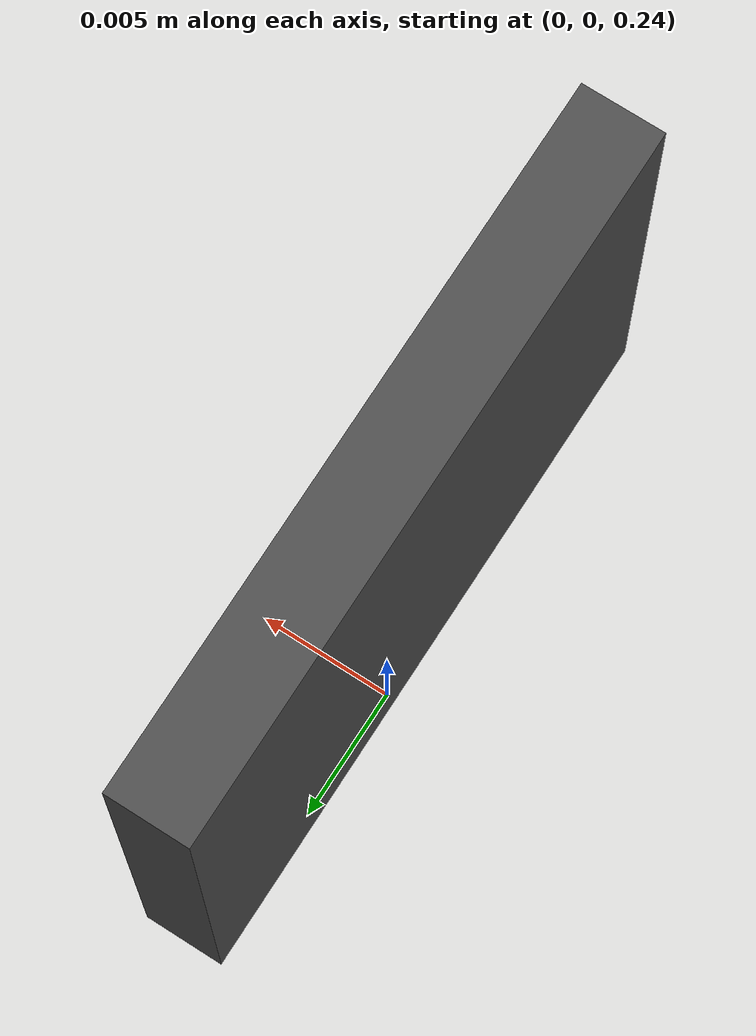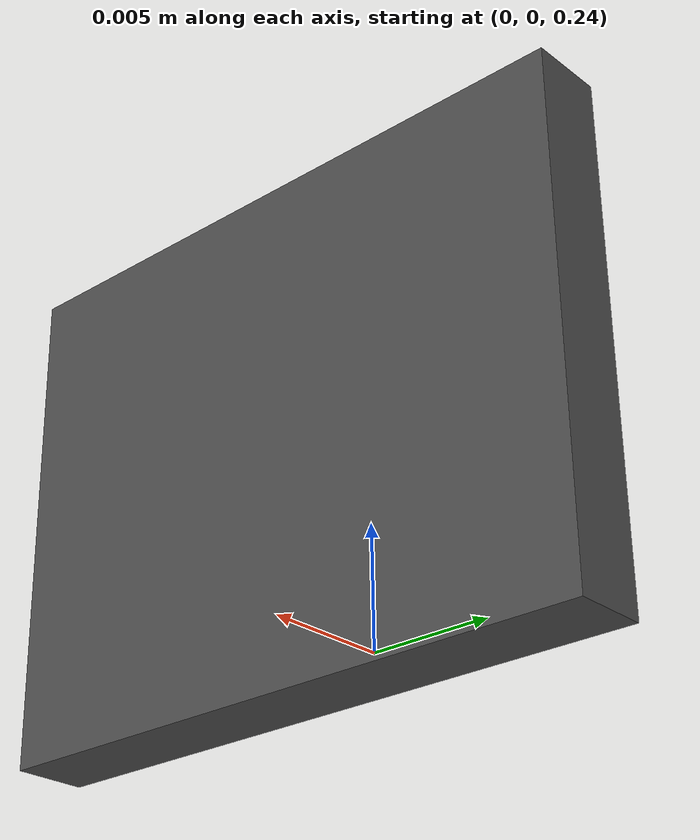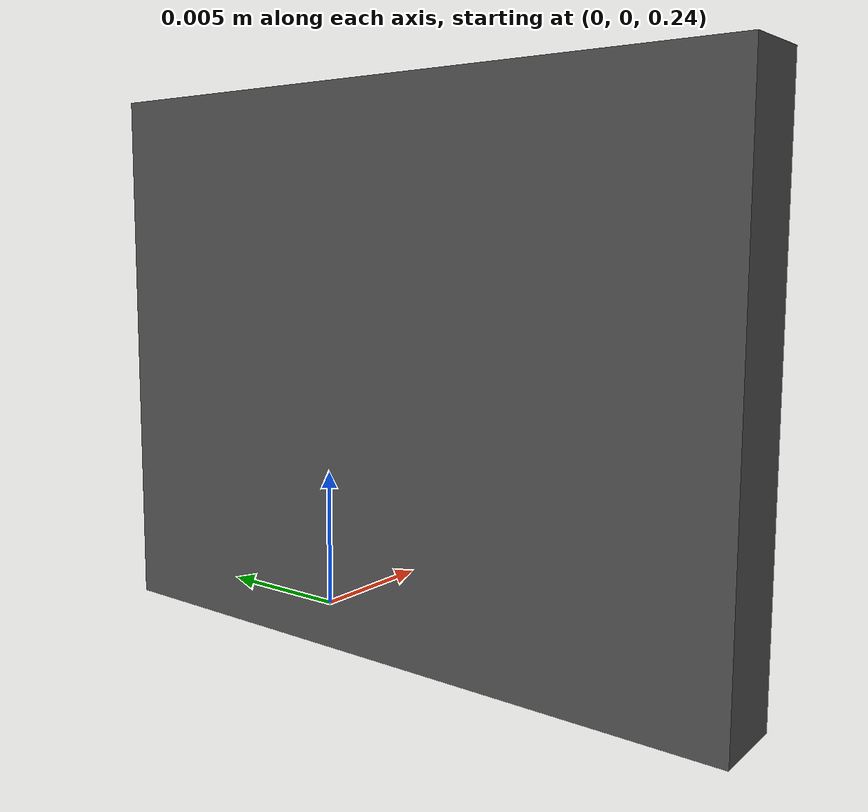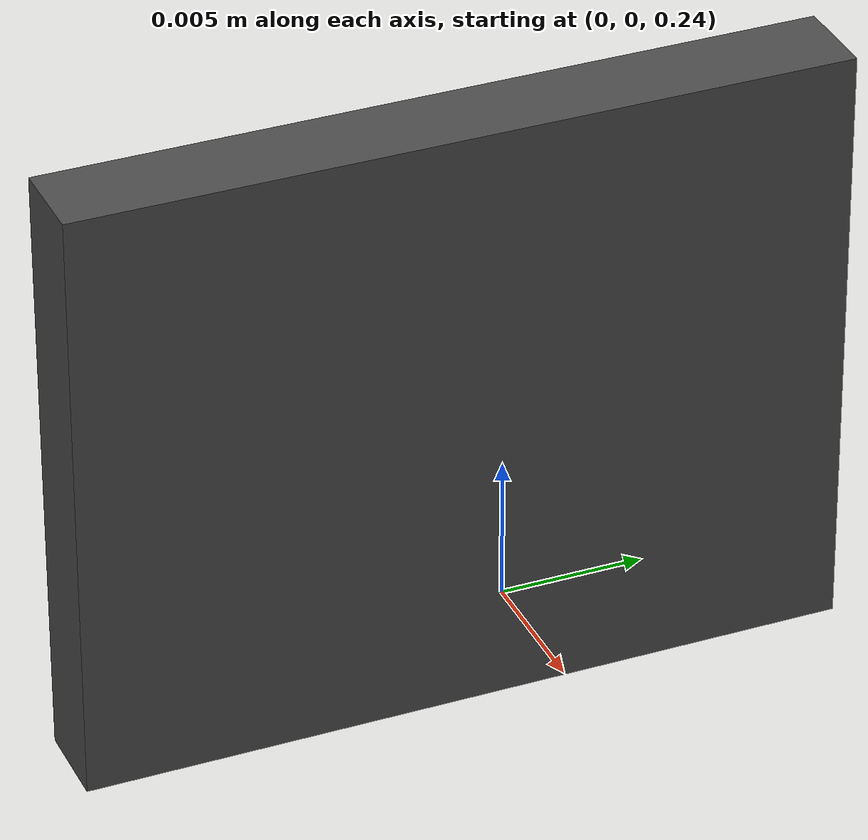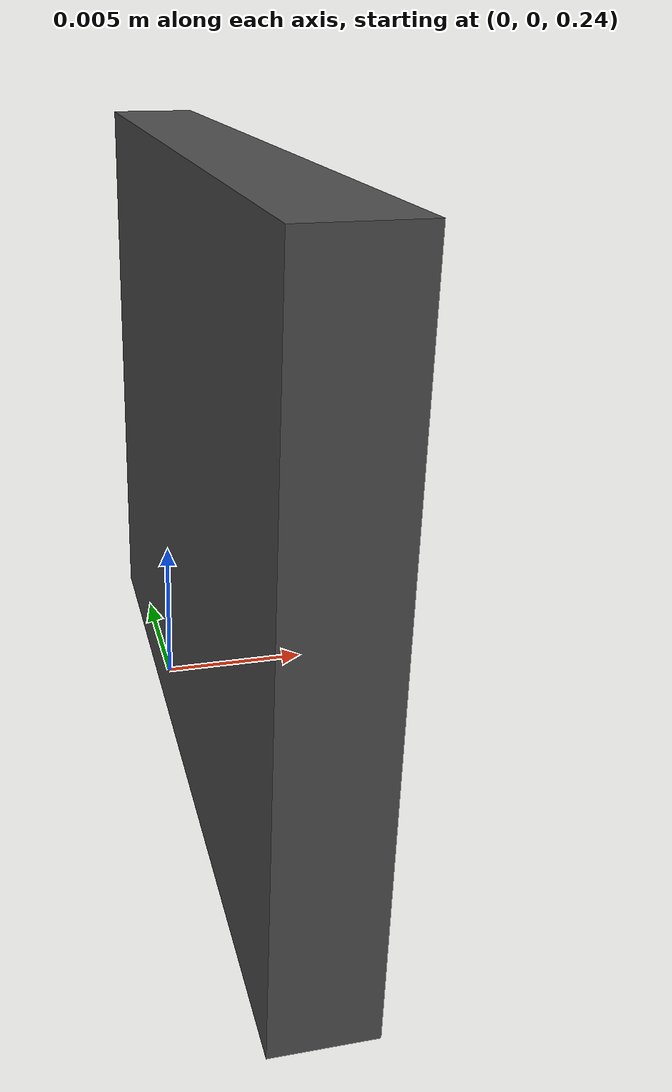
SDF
<?xml version='1.0'?>
<sdf version='1.6'>
  <model name='VL53L1X'>
    <link name='link'>
      <sensor name='VL53L1X_rangefinder' type='ray'>
        <pose frame=''>0 0 0 1.5707 -0 0</pose>
        <visualize>1</visualize>
        <update_rate>10</update_rate>
		<topic>Distance</topic>
		<ray>
          <noise>
            <type>gaussian</type>
            <mean>0</mean>
            <stddev>0.01</stddev>
          </noise>
          <scan>
            <horizontal>
              <samples>16</samples>
              <resolution>1</resolution>
              <min_angle>-0.235619</min_angle>
              <max_angle>0.235619</max_angle>
            </horizontal>
            <vertical>
              <samples>16</samples>
              <resolution>1</resolution>
              <min_angle>-0.235619</min_angle>
              <max_angle>0.235619</max_angle>
            </vertical>
          </scan>
          <range>
            <min>0.05</min>
            <max>4</max>
            <resolution>0.001</resolution>
          </range>
        </ray>
      </sensor>
      <inertial>
        <mass>0.000121069</mass>
        <inertia>
          <ixx>3.83685e-08</ixx>
          <ixy>0</ixy>
          <ixz>0</ixz>
          <iyy>5.94533e-08</iyy>
          <iyz>0</iyz>
          <izz>6.4273e-08</izz>
        </inertia>
        <pose frame=''>0 0 0 0 -0 0</pose>
      </inertial>
      <pose frame=''>0.001396 -0.002424 0.248714 0 -0 0</pose>
      <self_collide>0</self_collide>
      <enable_wind>0</enable_wind>
      <kinematic>0</kinematic>
      <visual name='visual'>
        <pose frame=''>0 0 0 0 -0 0</pose>
        <geometry>
          <box>
            <size>0.00304 0.026264 0.020775</size>
          </box>
        </geometry>
        <material>
          <lighting>1</lighting>
          <script>
            <uri>file://media/materials/scripts/gazebo.material</uri>
            <name>Gazebo/DarkGrey</name>
          </script>
          <emissive>0 0 0 1</emissive>
        </material>
        <transparency>0</transparency>
        <cast_shadows>1</cast_shadows>
      </visual>
      <collision name='collision'>
        <laser_retro>0</laser_retro>
        <max_contacts>10</max_contacts>
        <pose frame=''>0 0 0 0 -0 0</pose>
        <geometry>
          <box>
            <size>0.00304 0.026264 0.020775</size>
          </box>
        </geometry>
        <surface>
          <friction>
            <ode>
              <mu>1</mu>
              <mu2>1</mu2>
              <fdir1>0 0 0</fdir1>
              <slip1>0</slip1>
              <slip2>0</slip2>
            </ode>
            <torsional>
              <coefficient>1</coefficient>
              <patch_radius>0</patch_radius>
              <surface_radius>0</surface_radius>
              <use_patch_radius>1</use_patch_radius>
              <ode>
                <slip>0</slip>
              </ode>
            </torsional>
          </friction>
          <bounce>
            <restitution_coefficient>0</restitution_coefficient>
            <threshold>1e+06</threshold>
          </bounce>
          <contact>
            <collide_without_contact>0</collide_without_contact>
            <collide_without_contact_bitmask>1</collide_without_contact_bitmask>
            <collide_bitmask>1</collide_bitmask>
            <ode>
              <soft_cfm>0</soft_cfm>
              <soft_erp>0.2</soft_erp>
              <kp>1e+13</kp>
              <kd>1</kd>
              <max_vel>0.01</max_vel>
              <min_depth>0</min_depth>
            </ode>
            <bullet>
              <split_impulse>1</split_impulse>
              <split_impulse_penetration_threshold>-0.01</split_impulse_penetration_threshold>
              <soft_cfm>0</soft_cfm>
              <soft_erp>0.2</soft_erp>
              <kp>1e+13</kp>
              <kd>1</kd>
            </bullet>
          </contact>
        </surface>
      </collision>
    </link>
    <static>0</static>
    <allow_auto_disable>1</allow_auto_disable>
	<plugin name='VL53L1X_plugin' filename='file:///~/.gazebo_parts/VL53L1X/plugin/build/libVL53L1X_plugin.so'/>
  </model>
</sdf>
